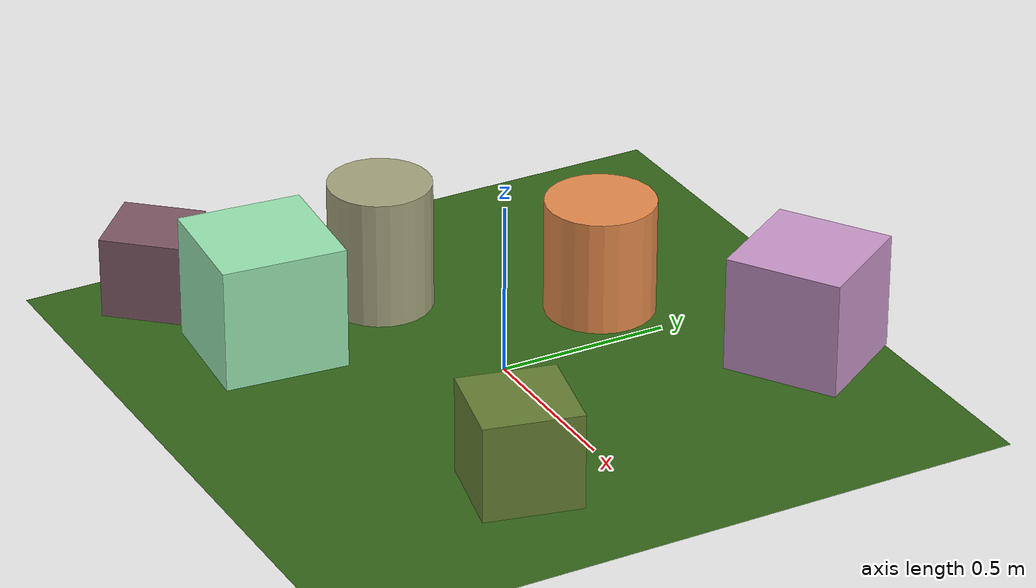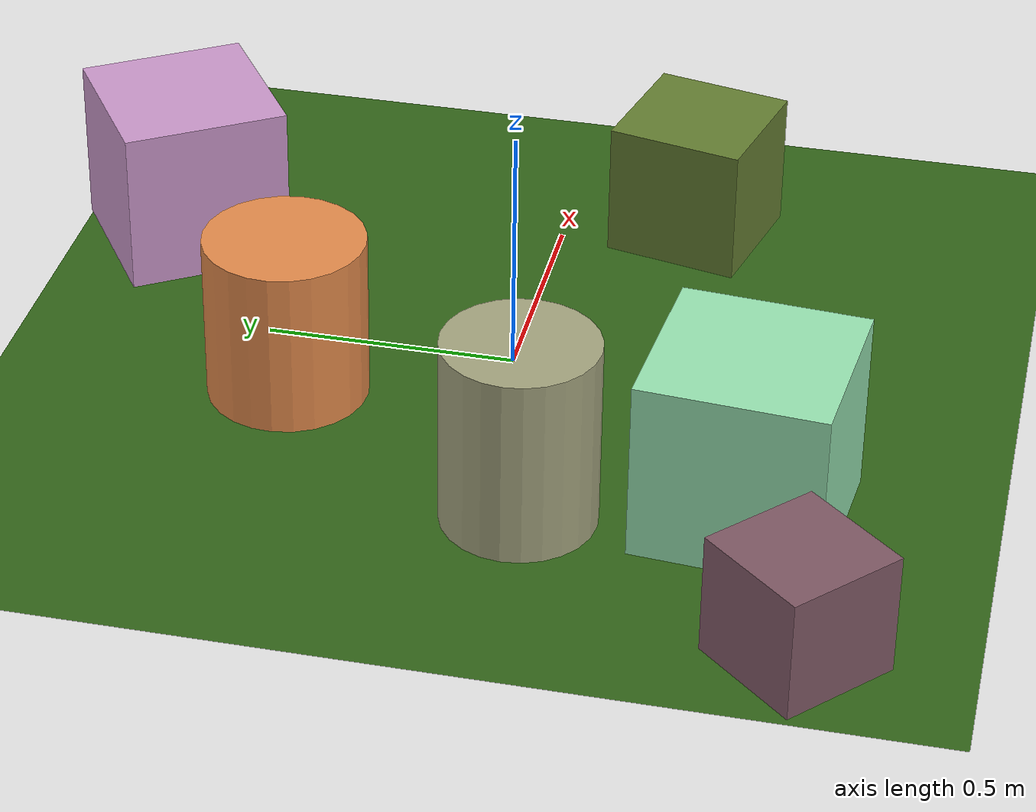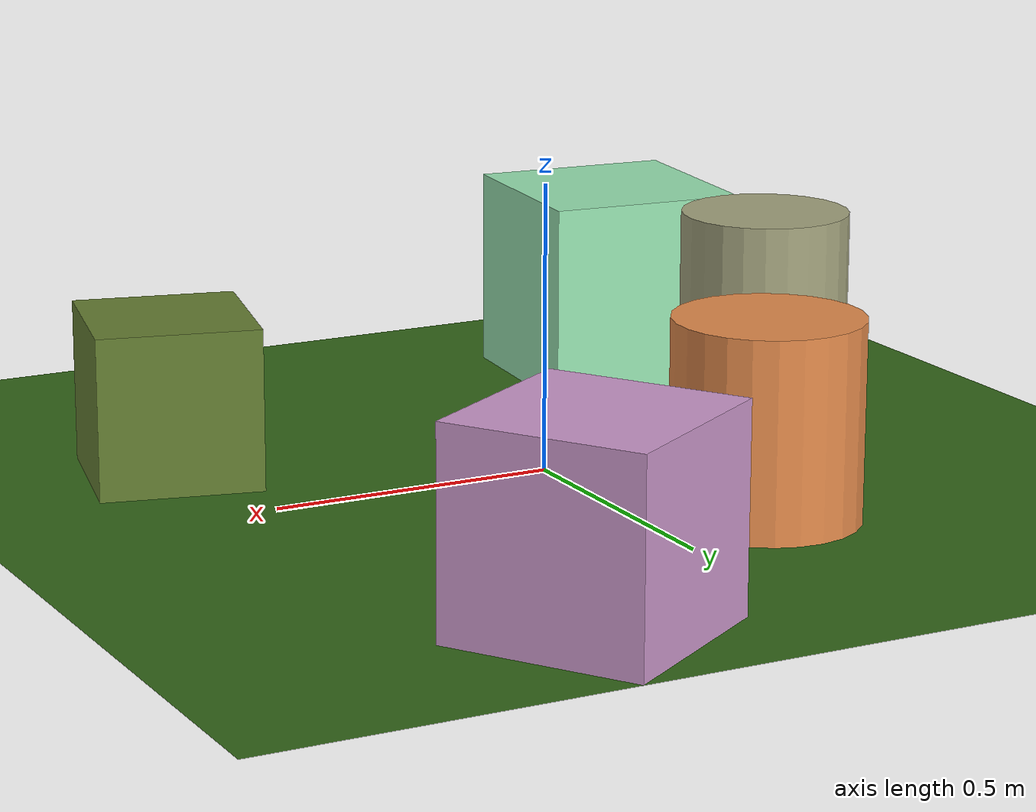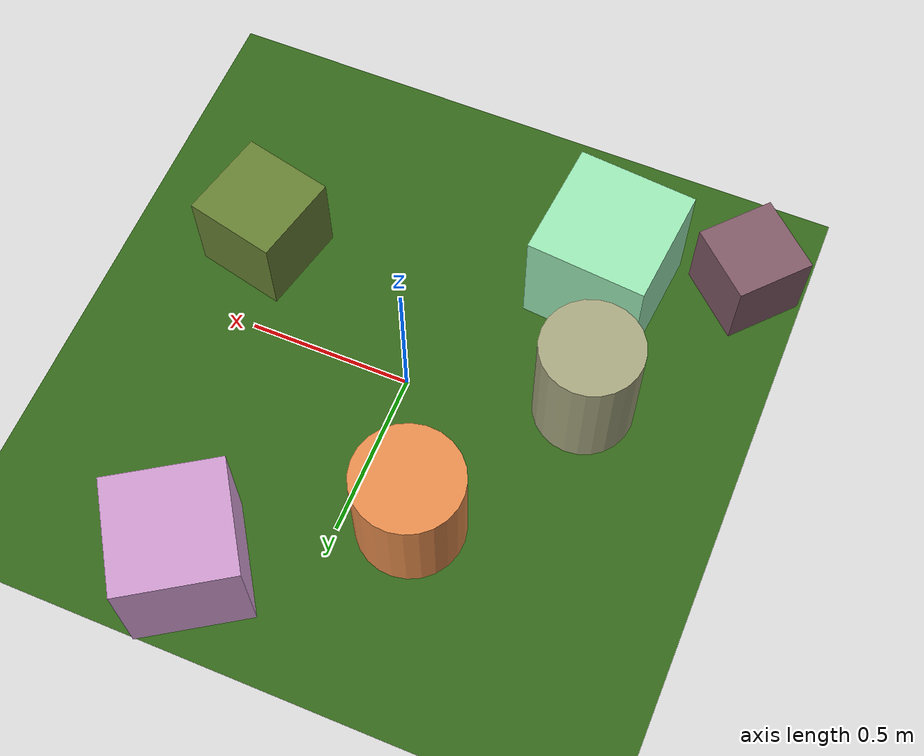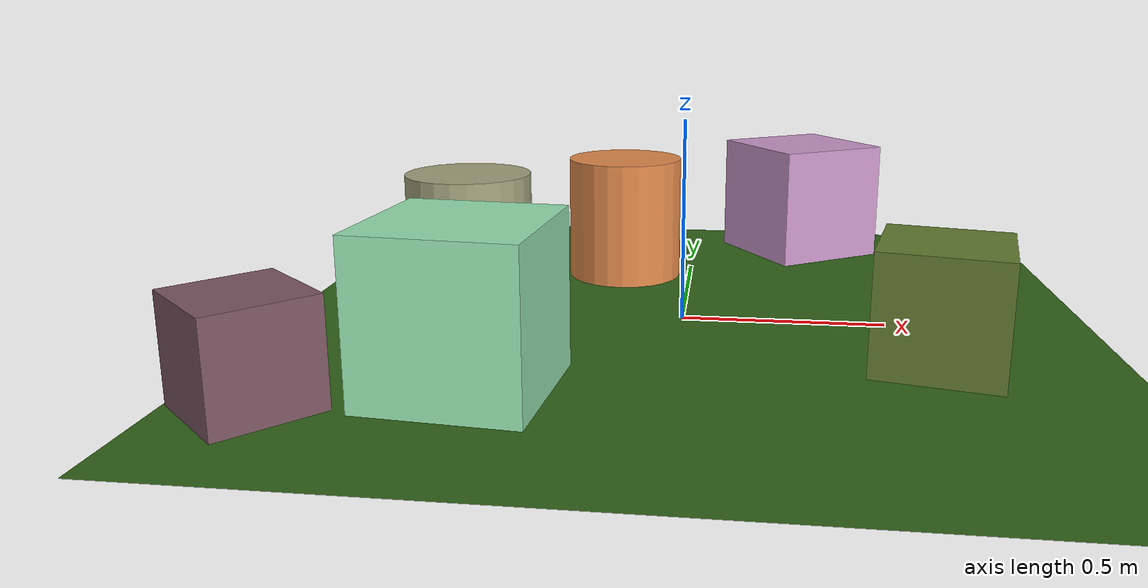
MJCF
<mujoco>
   <asset>
<texture type="skybox" builtin="gradient" rgb1="0.5 0.6 0.2" rgb2="0.2 0.7 0.1" width="500" height="500"/>
<texture name="flat_0" builtin="flat" rgb1="0.6 0.9 0.7" rgb2="0.6 0.9 0.7"  width="500" height="500"/>
<texture name="checker_1" builtin="checker" rgb1="0.7 0.6 0.4" rgb2="0.3 0.1 0.4" width="500" height="500"/>
<texture name="checker_2" builtin="checker" rgb1="0.4 0.5 0.0" rgb2="0.4 0.5 0.4" width="500" height="500"/>
<texture name="checker_3" builtin="checker" rgb1="0.8 0.2 0.1" rgb2="1.0 0.9 0.5" width="500" height="500"/>
<texture name="flat_4" builtin="flat" rgb1="0.8 0.6 0.8" rgb2="0.8 0.6 0.8"  width="500" height="500"/>
<texture name="gradient_5" builtin="gradient" rgb1="0.6 0.6 0.9" rgb2="0.7 0.7 0.1" width="500" height="500"/><material name="flat_0_mat" reflectance="0.10585384158180089" texture="flat_0" texuniform="true"/>
<material name="checker_1_mat" reflectance="0.9080207492217163" texrepeat="7 7" texture="checker_1" texuniform="false" />
<material name="checker_2_mat" reflectance="0.3427977514138826" texrepeat="6 6" texture="checker_2" texuniform="false" />
<material name="checker_3_mat" reflectance="0.2627367134071177" texrepeat="9 9" texture="checker_3" texuniform="false" />
<material name="flat_4_mat" reflectance="0.07534529121437206" texture="flat_4" texuniform="true"/>
<material name="gradient_5_mat" reflectance="0.856540373560194" texture="gradient_5" texuniform="true"/>
   </asset>

   <worldbody>
     <geom type="plane" size="1 1 0.1" rgba="0.2 0.4 0.1 1" />
<light pos="-0.7755086988420128 -0.4945244763304264 2" dir="0 0 -1" cutoff="90" diffuse="1 1 1" specular="1 1 1"/>
<geom type="box" pos="-0.42 -0.53 0.18" size="0.18 0.18 0.18" material="flat_0_mat" euler="0 0 85" />
<geom type="box" pos="-0.82 -0.68 0.12" size="0.12 0.12 0.12" material="checker_1_mat" euler="0 0 48" />
<geom type="box" pos="0.58 -0.27 0.14" size="0.14 0.14 0.14" material="checker_2_mat" euler="0 0 77" />
<geom type="cylinder" pos="-0.19 0.41 0.17" size="0.16 0.17 0.17" material="checker_3_mat" euler="0 0 34" />
<geom type="box" pos="0.33 0.77 0.17" size="0.17 0.17 0.17" material="flat_4_mat" euler="0 0 33" />
<geom type="cylinder" pos="-0.51 -0.12 0.19" size="0.15 0.19 0.19" material="gradient_5_mat" euler="0 0 14" /><camera euler="60 0 180" fovy="60" name="camera1" pos="-0.2 -1.5 1"></camera>   </worldbody>
   <visual>
      <headlight diffuse="0.7 0.7 0.7"/>
   </visual>
</mujoco>
